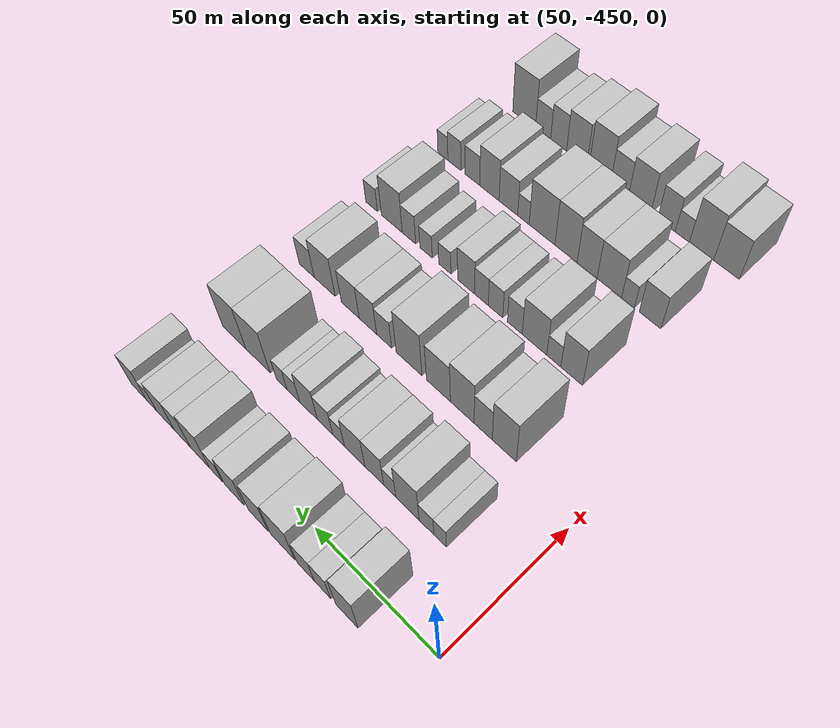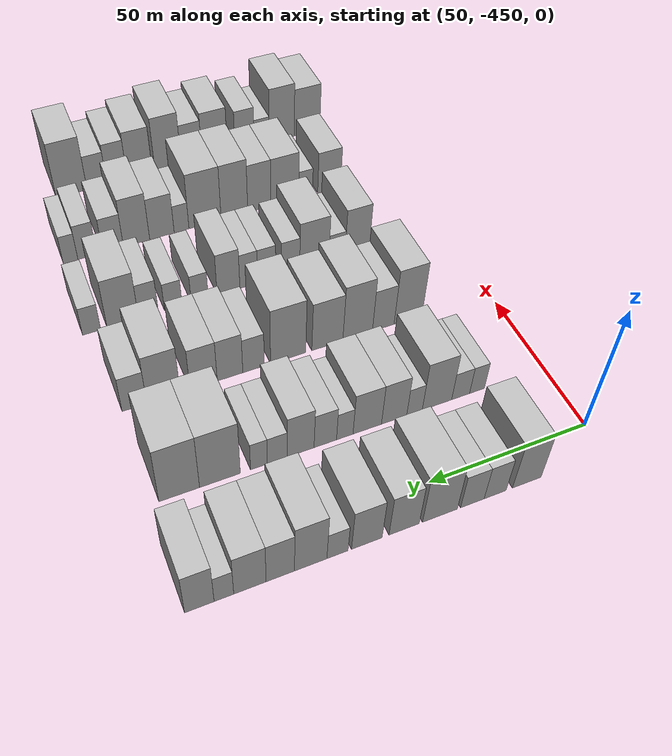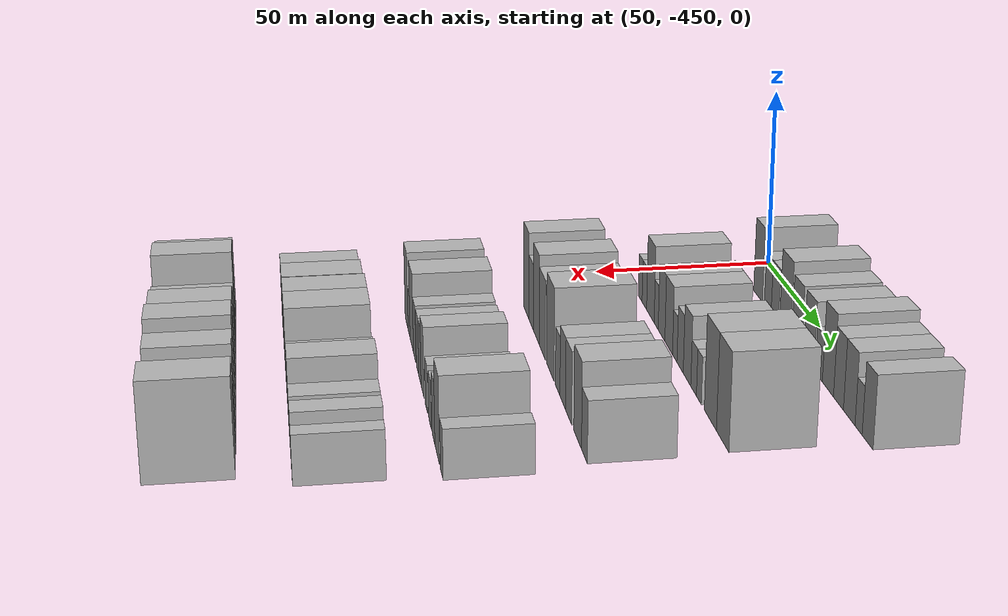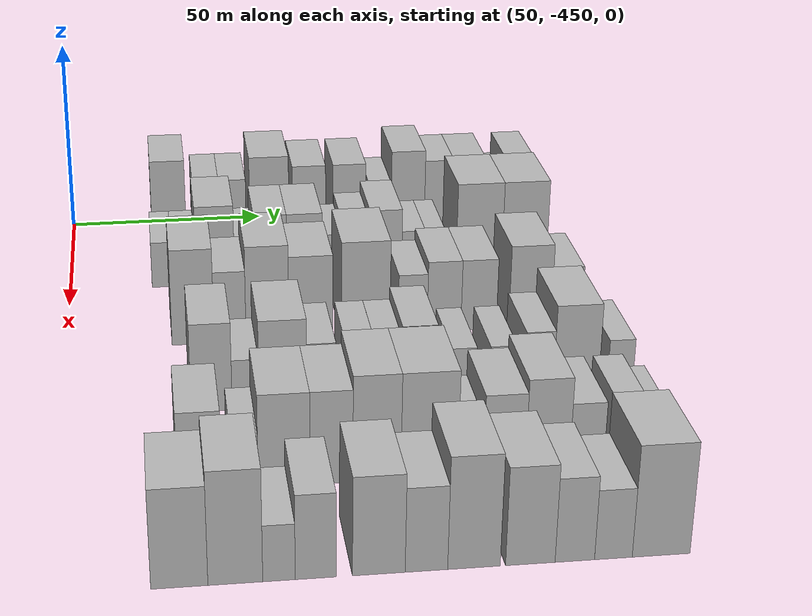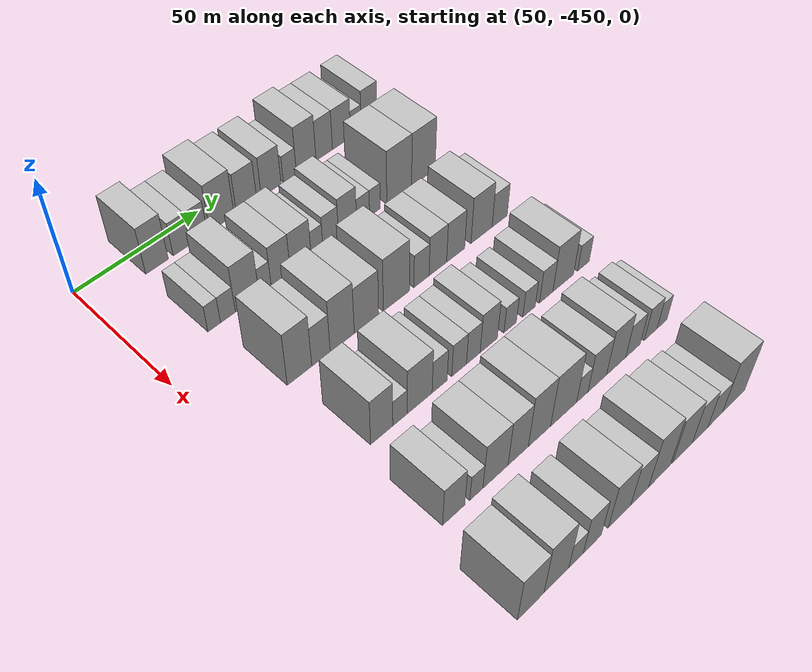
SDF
<sdf version="1.6">
 <world name="default">
  <model name="building_13">
   <static>1</static>
   <pose>50.0000 -424.6937 0 0.000000 0.000000 0.000000</pose>
   <link name="link">
    <pose>0 0 10.50 0 0 0</pose>
    <collision name="collision"><geometry><box><size>20.0000 9.0084 21.0000</size></box></geometry></collision>
    <visual name="visual">
     <cast_shadows>0</cast_shadows>
     <geometry><box><size>20.0000 9.0084 21.0000</size></box></geometry>
     <material>
      <script>
       <uri>model://HANNAS_wall/materials/scripts</uri>
       <uri>model://HANNAS_wall/materials/textures</uri>
       <name>vrc/HANNAS_wall</name>
      </script>
     </material>
    </visual>
   </link>
  </model>
  <model name="building_14">
   <static>1</static>
   <pose>50.0000 -414.7915 0 0.000000 0.000000 0.000000</pose>
   <link name="link">
    <pose>0 0 7.50 0 0 0</pose>
    <collision name="collision"><geometry><box><size>20.0000 6.7960 15.0000</size></box></geometry></collision>
    <visual name="visual">
     <cast_shadows>0</cast_shadows>
     <geometry><box><size>20.0000 6.7960 15.0000</size></box></geometry>
     <material>
      <script>
       <uri>model://HANNAS_wall/materials/scripts</uri>
       <uri>model://HANNAS_wall/materials/textures</uri>
       <name>vrc/HANNAS_wall</name>
      </script>
     </material>
    </visual>
   </link>
  </model>
  <model name="building_15">
   <static>1</static>
   <pose>50.0000 -407.7959 0 0.000000 0.000000 0.000000</pose>
   <link name="link">
    <pose>0 0 7.50 0 0 0</pose>
    <collision name="collision"><geometry><box><size>20.0000 7.1952 15.0000</size></box></geometry></collision>
    <visual name="visual">
     <cast_shadows>0</cast_shadows>
     <geometry><box><size>20.0000 7.1952 15.0000</size></box></geometry>
     <material>
      <script>
       <uri>model://HANNAS_wall/materials/scripts</uri>
       <uri>model://HANNAS_wall/materials/textures</uri>
       <name>vrc/HANNAS_wall</name>
      </script>
     </material>
    </visual>
   </link>
  </model>
  <model name="building_16">
   <static>1</static>
   <pose>50.0000 -397.9881 0 0.000000 0.000000 0.000000</pose>
   <link name="link">
    <pose>0 0 10.50 0 0 0</pose>
    <collision name="collision"><geometry><box><size>20.0000 10.4205 21.0000</size></box></geometry></collision>
    <visual name="visual">
     <cast_shadows>0</cast_shadows>
     <geometry><box><size>20.0000 10.4205 21.0000</size></box></geometry>
     <material>
      <script>
       <uri>model://HANNAS_wall/materials/scripts</uri>
       <uri>model://HANNAS_wall/materials/textures</uri>
       <name>vrc/HANNAS_wall</name>
      </script>
     </material>
    </visual>
   </link>
  </model>
  <model name="building_17">
   <static>1</static>
   <pose>50.0000 -387.3474 0 0.000000 0.000000 0.000000</pose>
   <link name="link">
    <pose>0 0 9.00 0 0 0</pose>
    <collision name="collision"><geometry><box><size>20.0000 8.8608 18.0000</size></box></geometry></collision>
    <visual name="visual">
     <cast_shadows>0</cast_shadows>
     <geometry><box><size>20.0000 8.8608 18.0000</size></box></geometry>
     <material>
      <script>
       <uri>model://HANNAS_wall/materials/scripts</uri>
       <uri>model://HANNAS_wall/materials/textures</uri>
       <name>vrc/HANNAS_wall</name>
      </script>
     </material>
    </visual>
   </link>
  </model>
  <model name="building_18">
   <static>1</static>
   <pose>50.0000 -376.5209 0 0.000000 0.000000 0.000000</pose>
   <link name="link">
    <pose>0 0 9.00 0 0 0</pose>
    <collision name="collision"><geometry><box><size>20.0000 8.7922 18.0000</size></box></geometry></collision>
    <visual name="visual">
     <cast_shadows>0</cast_shadows>
     <geometry><box><size>20.0000 8.7922 18.0000</size></box></geometry>
     <material>
      <script>
       <uri>model://HANNAS_wall/materials/scripts</uri>
       <uri>model://HANNAS_wall/materials/textures</uri>
       <name>vrc/HANNAS_wall</name>
      </script>
     </material>
    </visual>
   </link>
  </model>
  <model name="building_19">
   <static>1</static>
   <pose>50.0000 -368.1460 0 0.000000 0.000000 0.000000</pose>
   <link name="link">
    <pose>0 0 6.00 0 0 0</pose>
    <collision name="collision"><geometry><box><size>20.0000 5.9575 12.0000</size></box></geometry></collision>
    <visual name="visual">
     <cast_shadows>0</cast_shadows>
     <geometry><box><size>20.0000 5.9575 12.0000</size></box></geometry>
     <material>
      <script>
       <uri>model://HANNAS_wall/materials/scripts</uri>
       <uri>model://HANNAS_wall/materials/textures</uri>
       <name>vrc/HANNAS_wall</name>
      </script>
     </material>
    </visual>
   </link>
  </model>
  <model name="building_20">
   <static>1</static>
   <pose>50.0000 -360.6383 0 0.000000 0.000000 0.000000</pose>
   <link name="link">
    <pose>0 0 10.50 0 0 0</pose>
    <collision name="collision"><geometry><box><size>20.0000 9.0580 21.0000</size></box></geometry></collision>
    <visual name="visual">
     <cast_shadows>0</cast_shadows>
     <geometry><box><size>20.0000 9.0580 21.0000</size></box></geometry>
     <material>
      <script>
       <uri>model://HANNAS_wall/materials/scripts</uri>
       <uri>model://HANNAS_wall/materials/textures</uri>
       <name>vrc/HANNAS_wall</name>
      </script>
     </material>
    </visual>
   </link>
  </model>
  <model name="building_21">
   <static>1</static>
   <pose>50.0000 -352.2308 0 0.000000 0.000000 0.000000</pose>
   <link name="link">
    <pose>0 0 9.00 0 0 0</pose>
    <collision name="collision"><geometry><box><size>20.0000 7.7570 18.0000</size></box></geometry></collision>
    <visual name="visual">
     <cast_shadows>0</cast_shadows>
     <geometry><box><size>20.0000 7.7570 18.0000</size></box></geometry>
     <material>
      <script>
       <uri>model://HANNAS_wall/materials/scripts</uri>
       <uri>model://HANNAS_wall/materials/textures</uri>
       <name>vrc/HANNAS_wall</name>
      </script>
     </material>
    </visual>
   </link>
  </model>
  <model name="building_22">
   <static>1</static>
   <pose>50.0000 -344.0034 0 0.000000 0.000000 0.000000</pose>
   <link name="link">
    <pose>0 0 9.00 0 0 0</pose>
    <collision name="collision"><geometry><box><size>20.0000 8.6980 18.0000</size></box></geometry></collision>
    <visual name="visual">
     <cast_shadows>0</cast_shadows>
     <geometry><box><size>20.0000 8.6980 18.0000</size></box></geometry>
     <material>
      <script>
       <uri>model://HANNAS_wall/materials/scripts</uri>
       <uri>model://HANNAS_wall/materials/textures</uri>
       <name>vrc/HANNAS_wall</name>
      </script>
     </material>
    </visual>
   </link>
  </model>
  <model name="building_23">
   <static>1</static>
   <pose>50.0000 -337.0543 0 0.000000 0.000000 0.000000</pose>
   <link name="link">
    <pose>0 0 6.00 0 0 0</pose>
    <collision name="collision"><geometry><box><size>20.0000 5.2001 12.0000</size></box></geometry></collision>
    <visual name="visual">
     <cast_shadows>0</cast_shadows>
     <geometry><box><size>20.0000 5.2001 12.0000</size></box></geometry>
     <material>
      <script>
       <uri>model://HANNAS_wall/materials/scripts</uri>
       <uri>model://HANNAS_wall/materials/textures</uri>
       <name>vrc/HANNAS_wall</name>
      </script>
     </material>
    </visual>
   </link>
  </model>
  <model name="building_24">
   <static>1</static>
   <pose>50.0000 -330.5695 0 0.000000 0.000000 0.000000</pose>
   <link name="link">
    <pose>0 0 9.00 0 0 0</pose>
    <collision name="collision"><geometry><box><size>20.0000 7.7696 18.0000</size></box></geometry></collision>
    <visual name="visual">
     <cast_shadows>0</cast_shadows>
     <geometry><box><size>20.0000 7.7696 18.0000</size></box></geometry>
     <material>
      <script>
       <uri>model://HANNAS_wall/materials/scripts</uri>
       <uri>model://HANNAS_wall/materials/textures</uri>
       <name>vrc/HANNAS_wall</name>
      </script>
     </material>
    </visual>
   </link>
  </model>
  <model name="building_130">
   <static>1</static>
   <pose>82.0000 -427.3768 0 0.000000 0.000000 0.000000</pose>
   <link name="link">
    <pose>0 0 6.00 0 0 0</pose>
    <collision name="collision"><geometry><box><size>20.0000 4.9490 12.0000</size></box></geometry></collision>
    <visual name="visual">
     <cast_shadows>0</cast_shadows>
     <geometry><box><size>20.0000 4.9490 12.0000</size></box></geometry>
     <material>
      <script>
       <uri>model://HANNAS_wall/materials/scripts</uri>
       <uri>model://HANNAS_wall/materials/textures</uri>
       <name>vrc/HANNAS_wall</name>
      </script>
     </material>
    </visual>
   </link>
  </model>
  <model name="building_131">
   <static>1</static>
   <pose>82.0000 -421.9270 0 0.000000 0.000000 0.000000</pose>
   <link name="link">
    <pose>0 0 6.00 0 0 0</pose>
    <collision name="collision"><geometry><box><size>20.0000 5.9507 12.0000</size></box></geometry></collision>
    <visual name="visual">
     <cast_shadows>0</cast_shadows>
     <geometry><box><size>20.0000 5.9507 12.0000</size></box></geometry>
     <material>
      <script>
       <uri>model://HANNAS_wall/materials/scripts</uri>
       <uri>model://HANNAS_wall/materials/textures</uri>
       <name>vrc/HANNAS_wall</name>
      </script>
     </material>
    </visual>
   </link>
  </model>
  <model name="building_132">
   <static>1</static>
   <pose>82.0000 -414.1468 0 0.000000 0.000000 0.000000</pose>
   <link name="link">
    <pose>0 0 10.50 0 0 0</pose>
    <collision name="collision"><geometry><box><size>20.0000 9.6095 21.0000</size></box></geometry></collision>
    <visual name="visual">
     <cast_shadows>0</cast_shadows>
     <geometry><box><size>20.0000 9.6095 21.0000</size></box></geometry>
     <material>
      <script>
       <uri>model://HANNAS_wall/materials/scripts</uri>
       <uri>model://HANNAS_wall/materials/textures</uri>
       <name>vrc/HANNAS_wall</name>
      </script>
     </material>
    </visual>
   </link>
  </model>
  <model name="building_133">
   <static>1</static>
   <pose>82.0000 -406.8396 0 0.000000 0.000000 0.000000</pose>
   <link name="link">
    <pose>0 0 6.00 0 0 0</pose>
    <collision name="collision"><geometry><box><size>20.0000 5.0050 12.0000</size></box></geometry></collision>
    <visual name="visual">
     <cast_shadows>0</cast_shadows>
     <geometry><box><size>20.0000 5.0050 12.0000</size></box></geometry>
     <material>
      <script>
       <uri>model://HANNAS_wall/materials/scripts</uri>
       <uri>model://HANNAS_wall/materials/textures</uri>
       <name>vrc/HANNAS_wall</name>
      </script>
     </material>
    </visual>
   </link>
  </model>
  <model name="building_134">
   <static>1</static>
   <pose>82.0000 -400.3045 0 0.000000 0.000000 0.000000</pose>
   <link name="link">
    <pose>0 0 9.00 0 0 0</pose>
    <collision name="collision"><geometry><box><size>20.0000 8.0650 18.0000</size></box></geometry></collision>
    <visual name="visual">
     <cast_shadows>0</cast_shadows>
     <geometry><box><size>20.0000 8.0650 18.0000</size></box></geometry>
     <material>
      <script>
       <uri>model://HANNAS_wall/materials/scripts</uri>
       <uri>model://HANNAS_wall/materials/textures</uri>
       <name>vrc/HANNAS_wall</name>
      </script>
     </material>
    </visual>
   </link>
  </model>
  <model name="building_135">
   <static>1</static>
   <pose>82.0000 -391.7988 0 0.000000 0.000000 0.000000</pose>
   <link name="link">
    <pose>0 0 9.00 0 0 0</pose>
    <collision name="collision"><geometry><box><size>20.0000 8.9465 18.0000</size></box></geometry></collision>
    <visual name="visual">
     <cast_shadows>0</cast_shadows>
     <geometry><box><size>20.0000 8.9465 18.0000</size></box></geometry>
     <material>
      <script>
       <uri>model://HANNAS_wall/materials/scripts</uri>
       <uri>model://HANNAS_wall/materials/textures</uri>
       <name>vrc/HANNAS_wall</name>
      </script>
     </material>
    </visual>
   </link>
  </model>
  <model name="building_136">
   <static>1</static>
   <pose>82.0000 -384.7757 0 0.000000 0.000000 0.000000</pose>
   <link name="link">
    <pose>0 0 6.00 0 0 0</pose>
    <collision name="collision"><geometry><box><size>20.0000 5.0998 12.0000</size></box></geometry></collision>
    <visual name="visual">
     <cast_shadows>0</cast_shadows>
     <geometry><box><size>20.0000 5.0998 12.0000</size></box></geometry>
     <material>
      <script>
       <uri>model://HANNAS_wall/materials/scripts</uri>
       <uri>model://HANNAS_wall/materials/textures</uri>
       <name>vrc/HANNAS_wall</name>
      </script>
     </material>
    </visual>
   </link>
  </model>
  <model name="building_137">
   <static>1</static>
   <pose>82.0000 -378.7766 0 0.000000 0.000000 0.000000</pose>
   <link name="link">
    <pose>0 0 7.50 0 0 0</pose>
    <collision name="collision"><geometry><box><size>20.0000 6.8984 15.0000</size></box></geometry></collision>
    <visual name="visual">
     <cast_shadows>0</cast_shadows>
     <geometry><box><size>20.0000 6.8984 15.0000</size></box></geometry>
     <material>
      <script>
       <uri>model://HANNAS_wall/materials/scripts</uri>
       <uri>model://HANNAS_wall/materials/textures</uri>
       <name>vrc/HANNAS_wall</name>
      </script>
     </material>
    </visual>
   </link>
  </model>
  <model name="building_138">
   <static>1</static>
   <pose>82.0000 -371.2646 0 0.000000 0.000000 0.000000</pose>
   <link name="link">
    <pose>0 0 9.00 0 0 0</pose>
    <collision name="collision"><geometry><box><size>20.0000 8.1256 18.0000</size></box></geometry></collision>
    <visual name="visual">
     <cast_shadows>0</cast_shadows>
     <geometry><box><size>20.0000 8.1256 18.0000</size></box></geometry>
     <material>
      <script>
       <uri>model://HANNAS_wall/materials/scripts</uri>
       <uri>model://HANNAS_wall/materials/textures</uri>
       <name>vrc/HANNAS_wall</name>
      </script>
     </material>
    </visual>
   </link>
  </model>
  <model name="building_139">
   <static>1</static>
   <pose>82.0000 -364.2431 0 0.000000 0.000000 0.000000</pose>
   <link name="link">
    <pose>0 0 6.00 0 0 0</pose>
    <collision name="collision"><geometry><box><size>20.0000 5.9174 12.0000</size></box></geometry></collision>
    <visual name="visual">
     <cast_shadows>0</cast_shadows>
     <geometry><box><size>20.0000 5.9174 12.0000</size></box></geometry>
     <material>
      <script>
       <uri>model://HANNAS_wall/materials/scripts</uri>
       <uri>model://HANNAS_wall/materials/textures</uri>
       <name>vrc/HANNAS_wall</name>
      </script>
     </material>
    </visual>
   </link>
  </model>
  <model name="building_140">
   <static>1</static>
   <pose>82.0000 -358.7976 0 0.000000 0.000000 0.000000</pose>
   <link name="link">
    <pose>0 0 6.00 0 0 0</pose>
    <collision name="collision"><geometry><box><size>20.0000 4.9737 12.0000</size></box></geometry></collision>
    <visual name="visual">
     <cast_shadows>0</cast_shadows>
     <geometry><box><size>20.0000 4.9737 12.0000</size></box></geometry>
     <material>
      <script>
       <uri>model://HANNAS_wall/materials/scripts</uri>
       <uri>model://HANNAS_wall/materials/textures</uri>
       <name>vrc/HANNAS_wall</name>
      </script>
     </material>
    </visual>
   </link>
  </model>
  <model name="building_141">
   <static>1</static>
   <pose>82.0000 -347.4207 0 0.000000 0.000000 0.000000</pose>
   <link name="link">
    <pose>0 0 12.00 0 0 0</pose>
    <collision name="collision"><geometry><box><size>20.0000 11.7801 24.0000</size></box></geometry></collision>
    <visual name="visual">
     <cast_shadows>0</cast_shadows>
     <geometry><box><size>20.0000 11.7801 24.0000</size></box></geometry>
     <material>
      <script>
       <uri>model://HANNAS_wall/materials/scripts</uri>
       <uri>model://HANNAS_wall/materials/textures</uri>
       <name>vrc/HANNAS_wall</name>
      </script>
     </material>
    </visual>
   </link>
  </model>
  <model name="building_142">
   <static>1</static>
   <pose>82.0000 -335.7619 0 0.000000 0.000000 0.000000</pose>
   <link name="link">
    <pose>0 0 12.00 0 0 0</pose>
    <collision name="collision"><geometry><box><size>20.0000 11.5374 24.0000</size></box></geometry></collision>
    <visual name="visual">
     <cast_shadows>0</cast_shadows>
     <geometry><box><size>20.0000 11.5374 24.0000</size></box></geometry>
     <material>
      <script>
       <uri>model://HANNAS_wall/materials/scripts</uri>
       <uri>model://HANNAS_wall/materials/textures</uri>
       <name>vrc/HANNAS_wall</name>
      </script>
     </material>
    </visual>
   </link>
  </model>
  <model name="building_259">
   <static>1</static>
   <pose>114.0000 -421.0324 0 0.000000 0.000000 0.000000</pose>
   <link name="link">
    <pose>0 0 12.00 0 0 0</pose>
    <collision name="collision"><geometry><box><size>20.0000 9.7336 24.0000</size></box></geometry></collision>
    <visual name="visual">
     <cast_shadows>0</cast_shadows>
     <geometry><box><size>20.0000 9.7336 24.0000</size></box></geometry>
     <material>
      <script>
       <uri>model://HANNAS_wall/materials/scripts</uri>
       <uri>model://HANNAS_wall/materials/textures</uri>
       <name>vrc/HANNAS_wall</name>
      </script>
     </material>
    </visual>
   </link>
  </model>
  <model name="building_260">
   <static>1</static>
   <pose>114.0000 -412.4393 0 0.000000 0.000000 0.000000</pose>
   <link name="link">
    <pose>0 0 9.00 0 0 0</pose>
    <collision name="collision"><geometry><box><size>20.0000 7.4528 18.0000</size></box></geometry></collision>
    <visual name="visual">
     <cast_shadows>0</cast_shadows>
     <geometry><box><size>20.0000 7.4528 18.0000</size></box></geometry>
     <material>
      <script>
       <uri>model://HANNAS_wall/materials/scripts</uri>
       <uri>model://HANNAS_wall/materials/textures</uri>
       <name>vrc/HANNAS_wall</name>
      </script>
     </material>
    </visual>
   </link>
  </model>
  <model name="building_261">
   <static>1</static>
   <pose>114.0000 -403.7039 0 0.000000 0.000000 0.000000</pose>
   <link name="link">
    <pose>0 0 12.00 0 0 0</pose>
    <collision name="collision"><geometry><box><size>20.0000 10.0180 24.0000</size></box></geometry></collision>
    <visual name="visual">
     <cast_shadows>0</cast_shadows>
     <geometry><box><size>20.0000 10.0180 24.0000</size></box></geometry>
     <material>
      <script>
       <uri>model://HANNAS_wall/materials/scripts</uri>
       <uri>model://HANNAS_wall/materials/textures</uri>
       <name>vrc/HANNAS_wall</name>
      </script>
     </material>
    </visual>
   </link>
  </model>
  <model name="building_262">
   <static>1</static>
   <pose>114.0000 -393.5247 0 0.000000 0.000000 0.000000</pose>
   <link name="link">
    <pose>0 0 10.50 0 0 0</pose>
    <collision name="collision"><geometry><box><size>20.0000 10.3404 21.0000</size></box></geometry></collision>
    <visual name="visual">
     <cast_shadows>0</cast_shadows>
     <geometry><box><size>20.0000 10.3404 21.0000</size></box></geometry>
     <material>
      <script>
       <uri>model://HANNAS_wall/materials/scripts</uri>
       <uri>model://HANNAS_wall/materials/textures</uri>
       <name>vrc/HANNAS_wall</name>
      </script>
     </material>
    </visual>
   </link>
  </model>
  <model name="building_263">
   <static>1</static>
   <pose>114.0000 -380.6192 0 0.000000 0.000000 0.000000</pose>
   <link name="link">
    <pose>0 0 12.00 0 0 0</pose>
    <collision name="collision"><geometry><box><size>20.0000 11.4706 24.0000</size></box></geometry></collision>
    <visual name="visual">
     <cast_shadows>0</cast_shadows>
     <geometry><box><size>20.0000 11.4706 24.0000</size></box></geometry>
     <material>
      <script>
       <uri>model://HANNAS_wall/materials/scripts</uri>
       <uri>model://HANNAS_wall/materials/textures</uri>
       <name>vrc/HANNAS_wall</name>
      </script>
     </material>
    </visual>
   </link>
  </model>
  <model name="building_264">
   <static>1</static>
   <pose>114.0000 -369.4469 0 0.000000 0.000000 0.000000</pose>
   <link name="link">
    <pose>0 0 7.50 0 0 0</pose>
    <collision name="collision"><geometry><box><size>20.0000 6.8738 15.0000</size></box></geometry></collision>
    <visual name="visual">
     <cast_shadows>0</cast_shadows>
     <geometry><box><size>20.0000 6.8738 15.0000</size></box></geometry>
     <material>
      <script>
       <uri>model://HANNAS_wall/materials/scripts</uri>
       <uri>model://HANNAS_wall/materials/textures</uri>
       <name>vrc/HANNAS_wall</name>
      </script>
     </material>
    </visual>
   </link>
  </model>
  <model name="building_265">
   <static>1</static>
   <pose>114.0000 -361.9762 0 0.000000 0.000000 0.000000</pose>
   <link name="link">
    <pose>0 0 9.00 0 0 0</pose>
    <collision name="collision"><geometry><box><size>20.0000 8.0677 18.0000</size></box></geometry></collision>
    <visual name="visual">
     <cast_shadows>0</cast_shadows>
     <geometry><box><size>20.0000 8.0677 18.0000</size></box></geometry>
     <material>
      <script>
       <uri>model://HANNAS_wall/materials/scripts</uri>
       <uri>model://HANNAS_wall/materials/textures</uri>
       <name>vrc/HANNAS_wall</name>
      </script>
     </material>
    </visual>
   </link>
  </model>
  <model name="building_266">
   <static>1</static>
   <pose>114.0000 -353.7000 0 0.000000 0.000000 0.000000</pose>
   <link name="link">
    <pose>0 0 9.00 0 0 0</pose>
    <collision name="collision"><geometry><box><size>20.0000 8.4847 18.0000</size></box></geometry></collision>
    <visual name="visual">
     <cast_shadows>0</cast_shadows>
     <geometry><box><size>20.0000 8.4847 18.0000</size></box></geometry>
     <material>
      <script>
       <uri>model://HANNAS_wall/materials/scripts</uri>
       <uri>model://HANNAS_wall/materials/textures</uri>
       <name>vrc/HANNAS_wall</name>
      </script>
     </material>
    </visual>
   </link>
  </model>
  <model name="building_267">
   <static>1</static>
   <pose>114.0000 -341.3632 0 0.000000 0.000000 0.000000</pose>
   <link name="link">
    <pose>0 0 10.50 0 0 0</pose>
    <collision name="collision"><geometry><box><size>20.0000 10.1888 21.0000</size></box></geometry></collision>
    <visual name="visual">
     <cast_shadows>0</cast_shadows>
     <geometry><box><size>20.0000 10.1888 21.0000</size></box></geometry>
     <material>
      <script>
       <uri>model://HANNAS_wall/materials/scripts</uri>
       <uri>model://HANNAS_wall/materials/textures</uri>
       <name>vrc/HANNAS_wall</name>
      </script>
     </material>
    </visual>
   </link>
  </model>
  <model name="building_268">
   <static>1</static>
   <pose>114.0000 -332.5548 0 0.000000 0.000000 0.000000</pose>
   <link name="link">
    <pose>0 0 7.50 0 0 0</pose>
    <collision name="collision"><geometry><box><size>20.0000 7.4280 15.0000</size></box></geometry></collision>
    <visual name="visual">
     <cast_shadows>0</cast_shadows>
     <geometry><box><size>20.0000 7.4280 15.0000</size></box></geometry>
     <material>
      <script>
       <uri>model://HANNAS_wall/materials/scripts</uri>
       <uri>model://HANNAS_wall/materials/textures</uri>
       <name>vrc/HANNAS_wall</name>
      </script>
     </material>
    </visual>
   </link>
  </model>
  <model name="building_366">
   <static>1</static>
   <pose>146.0000 -418.3691 0 0.000000 0.000000 0.000000</pose>
   <link name="link">
    <pose>0 0 10.50 0 0 0</pose>
    <collision name="collision"><geometry><box><size>20.0000 8.8698 21.0000</size></box></geometry></collision>
    <visual name="visual">
     <cast_shadows>0</cast_shadows>
     <geometry><box><size>20.0000 8.8698 21.0000</size></box></geometry>
     <material>
      <script>
       <uri>model://HANNAS_wall/materials/scripts</uri>
       <uri>model://HANNAS_wall/materials/textures</uri>
       <name>vrc/HANNAS_wall</name>
      </script>
     </material>
    </visual>
   </link>
  </model>
  <model name="building_367">
   <static>1</static>
   <pose>146.0000 -411.0286 0 0.000000 0.000000 0.000000</pose>
   <link name="link">
    <pose>0 0 6.00 0 0 0</pose>
    <collision name="collision"><geometry><box><size>20.0000 5.8111 12.0000</size></box></geometry></collision>
    <visual name="visual">
     <cast_shadows>0</cast_shadows>
     <geometry><box><size>20.0000 5.8111 12.0000</size></box></geometry>
     <material>
      <script>
       <uri>model://HANNAS_wall/materials/scripts</uri>
       <uri>model://HANNAS_wall/materials/textures</uri>
       <name>vrc/HANNAS_wall</name>
      </script>
     </material>
    </visual>
   </link>
  </model>
  <model name="building_368">
   <static>1</static>
   <pose>146.0000 -402.9404 0 0.000000 0.000000 0.000000</pose>
   <link name="link">
    <pose>0 0 10.50 0 0 0</pose>
    <collision name="collision"><geometry><box><size>20.0000 10.3654 21.0000</size></box></geometry></collision>
    <visual name="visual">
     <cast_shadows>0</cast_shadows>
     <geometry><box><size>20.0000 10.3654 21.0000</size></box></geometry>
     <material>
      <script>
       <uri>model://HANNAS_wall/materials/scripts</uri>
       <uri>model://HANNAS_wall/materials/textures</uri>
       <name>vrc/HANNAS_wall</name>
      </script>
     </material>
    </visual>
   </link>
  </model>
  <model name="building_369">
   <static>1</static>
   <pose>146.0000 -394.5740 0 0.000000 0.000000 0.000000</pose>
   <link name="link">
    <pose>0 0 7.50 0 0 0</pose>
    <collision name="collision"><geometry><box><size>20.0000 6.3672 15.0000</size></box></geometry></collision>
    <visual name="visual">
     <cast_shadows>0</cast_shadows>
     <geometry><box><size>20.0000 6.3672 15.0000</size></box></geometry>
     <material>
      <script>
       <uri>model://HANNAS_wall/materials/scripts</uri>
       <uri>model://HANNAS_wall/materials/textures</uri>
       <name>vrc/HANNAS_wall</name>
      </script>
     </material>
    </visual>
   </link>
  </model>
  <model name="building_370">
   <static>1</static>
   <pose>146.0000 -386.2161 0 0.000000 0.000000 0.000000</pose>
   <link name="link">
    <pose>0 0 7.50 0 0 0</pose>
    <collision name="collision"><geometry><box><size>20.0000 6.3487 15.0000</size></box></geometry></collision>
    <visual name="visual">
     <cast_shadows>0</cast_shadows>
     <geometry><box><size>20.0000 6.3487 15.0000</size></box></geometry>
     <material>
      <script>
       <uri>model://HANNAS_wall/materials/scripts</uri>
       <uri>model://HANNAS_wall/materials/textures</uri>
       <name>vrc/HANNAS_wall</name>
      </script>
     </material>
    </visual>
   </link>
  </model>
  <model name="building_371">
   <static>1</static>
   <pose>146.0000 -380.0095 0 0.000000 0.000000 0.000000</pose>
   <link name="link">
    <pose>0 0 7.50 0 0 0</pose>
    <collision name="collision"><geometry><box><size>20.0000 6.0644 15.0000</size></box></geometry></collision>
    <visual name="visual">
     <cast_shadows>0</cast_shadows>
     <geometry><box><size>20.0000 6.0644 15.0000</size></box></geometry>
     <material>
      <script>
       <uri>model://HANNAS_wall/materials/scripts</uri>
       <uri>model://HANNAS_wall/materials/textures</uri>
       <name>vrc/HANNAS_wall</name>
      </script>
     </material>
    </visual>
   </link>
  </model>
  <model name="building_372">
   <static>1</static>
   <pose>146.0000 -373.1115 0 0.000000 0.000000 0.000000</pose>
   <link name="link">
    <pose>0 0 9.00 0 0 0</pose>
    <collision name="collision"><geometry><box><size>20.0000 7.7315 18.0000</size></box></geometry></collision>
    <visual name="visual">
     <cast_shadows>0</cast_shadows>
     <geometry><box><size>20.0000 7.7315 18.0000</size></box></geometry>
     <material>
      <script>
       <uri>model://HANNAS_wall/materials/scripts</uri>
       <uri>model://HANNAS_wall/materials/textures</uri>
       <name>vrc/HANNAS_wall</name>
      </script>
     </material>
    </visual>
   </link>
  </model>
  <model name="building_373">
   <static>1</static>
   <pose>146.0000 -363.3980 0 0.000000 0.000000 0.000000</pose>
   <link name="link">
    <pose>0 0 6.00 0 0 0</pose>
    <collision name="collision"><geometry><box><size>20.0000 5.6955 12.0000</size></box></geometry></collision>
    <visual name="visual">
     <cast_shadows>0</cast_shadows>
     <geometry><box><size>20.0000 5.6955 12.0000</size></box></geometry>
     <material>
      <script>
       <uri>model://HANNAS_wall/materials/scripts</uri>
       <uri>model://HANNAS_wall/materials/textures</uri>
       <name>vrc/HANNAS_wall</name>
      </script>
     </material>
    </visual>
   </link>
  </model>
  <model name="building_374">
   <static>1</static>
   <pose>146.0000 -354.6327 0 0.000000 0.000000 0.000000</pose>
   <link name="link">
    <pose>0 0 6.00 0 0 0</pose>
    <collision name="collision"><geometry><box><size>20.0000 5.8353 12.0000</size></box></geometry></collision>
    <visual name="visual">
     <cast_shadows>0</cast_shadows>
     <geometry><box><size>20.0000 5.8353 12.0000</size></box></geometry>
     <material>
      <script>
       <uri>model://HANNAS_wall/materials/scripts</uri>
       <uri>model://HANNAS_wall/materials/textures</uri>
       <name>vrc/HANNAS_wall</name>
      </script>
     </material>
    </visual>
   </link>
  </model>
  <model name="building_375">
   <static>1</static>
   <pose>146.0000 -346.4797 0 0.000000 0.000000 0.000000</pose>
   <link name="link">
    <pose>0 0 7.50 0 0 0</pose>
    <collision name="collision"><geometry><box><size>20.0000 6.4708 15.0000</size></box></geometry></collision>
    <visual name="visual">
     <cast_shadows>0</cast_shadows>
     <geometry><box><size>20.0000 6.4708 15.0000</size></box></geometry>
     <material>
      <script>
       <uri>model://HANNAS_wall/materials/scripts</uri>
       <uri>model://HANNAS_wall/materials/textures</uri>
       <name>vrc/HANNAS_wall</name>
      </script>
     </material>
    </visual>
   </link>
  </model>
  <model name="building_376">
   <static>1</static>
   <pose>146.0000 -338.1781 0 0.000000 0.000000 0.000000</pose>
   <link name="link">
    <pose>0 0 10.50 0 0 0</pose>
    <collision name="collision"><geometry><box><size>20.0000 10.1324 21.0000</size></box></geometry></collision>
    <visual name="visual">
     <cast_shadows>0</cast_shadows>
     <geometry><box><size>20.0000 10.1324 21.0000</size></box></geometry>
     <material>
      <script>
       <uri>model://HANNAS_wall/materials/scripts</uri>
       <uri>model://HANNAS_wall/materials/textures</uri>
       <name>vrc/HANNAS_wall</name>
      </script>
     </material>
    </visual>
   </link>
  </model>
  <model name="building_377">
   <static>1</static>
   <pose>146.0000 -328.2269 0 0.000000 0.000000 0.000000</pose>
   <link name="link">
    <pose>0 0 6.00 0 0 0</pose>
    <collision name="collision"><geometry><box><size>20.0000 5.7700 12.0000</size></box></geometry></collision>
    <visual name="visual">
     <cast_shadows>0</cast_shadows>
     <geometry><box><size>20.0000 5.7700 12.0000</size></box></geometry>
     <material>
      <script>
       <uri>model://HANNAS_wall/materials/scripts</uri>
       <uri>model://HANNAS_wall/materials/textures</uri>
       <name>vrc/HANNAS_wall</name>
      </script>
     </material>
    </visual>
   </link>
  </model>
  <model name="building_483">
   <static>1</static>
   <pose>178.0000 -422.4183 0 0.000000 0.000000 0.000000</pose>
   <link name="link">
    <pose>0 0 9.00 0 0 0</pose>
    <collision name="collision"><geometry><box><size>20.0000 8.7818 18.0000</size></box></geometry></collision>
    <visual name="visual">
     <cast_shadows>0</cast_shadows>
     <geometry><box><size>20.0000 8.7818 18.0000</size></box></geometry>
     <material>
      <script>
       <uri>model://HANNAS_wall/materials/scripts</uri>
       <uri>model://HANNAS_wall/materials/textures</uri>
       <name>vrc/HANNAS_wall</name>
      </script>
     </material>
    </visual>
   </link>
  </model>
  <model name="building_484">
   <static>1</static>
   <pose>178.0000 -413.3851 0 0.000000 0.000000 0.000000</pose>
   <link name="link">
    <pose>0 0 6.00 0 0 0</pose>
    <collision name="collision"><geometry><box><size>20.0000 5.2847 12.0000</size></box></geometry></collision>
    <visual name="visual">
     <cast_shadows>0</cast_shadows>
     <geometry><box><size>20.0000 5.2847 12.0000</size></box></geometry>
     <material>
      <script>
       <uri>model://HANNAS_wall/materials/scripts</uri>
       <uri>model://HANNAS_wall/materials/textures</uri>
       <name>vrc/HANNAS_wall</name>
      </script>
     </material>
    </visual>
   </link>
  </model>
  <model name="building_485">
   <static>1</static>
   <pose>178.0000 -405.5469 0 0.000000 0.000000 0.000000</pose>
   <link name="link">
    <pose>0 0 10.50 0 0 0</pose>
    <collision name="collision"><geometry><box><size>20.0000 10.3917 21.0000</size></box></geometry></collision>
    <visual name="visual">
     <cast_shadows>0</cast_shadows>
     <geometry><box><size>20.0000 10.3917 21.0000</size></box></geometry>
     <material>
      <script>
       <uri>model://HANNAS_wall/materials/scripts</uri>
       <uri>model://HANNAS_wall/materials/textures</uri>
       <name>vrc/HANNAS_wall</name>
      </script>
     </material>
    </visual>
   </link>
  </model>
  <model name="building_486">
   <static>1</static>
   <pose>178.0000 -396.0582 0 0.000000 0.000000 0.000000</pose>
   <link name="link">
    <pose>0 0 10.50 0 0 0</pose>
    <collision name="collision"><geometry><box><size>20.0000 8.5857 21.0000</size></box></geometry></collision>
    <visual name="visual">
     <cast_shadows>0</cast_shadows>
     <geometry><box><size>20.0000 8.5857 21.0000</size></box></geometry>
     <material>
      <script>
       <uri>model://HANNAS_wall/materials/scripts</uri>
       <uri>model://HANNAS_wall/materials/textures</uri>
       <name>vrc/HANNAS_wall</name>
      </script>
     </material>
    </visual>
   </link>
  </model>
  <model name="building_487">
   <static>1</static>
   <pose>178.0000 -386.8943 0 0.000000 0.000000 0.000000</pose>
   <link name="link">
    <pose>0 0 12.00 0 0 0</pose>
    <collision name="collision"><geometry><box><size>20.0000 9.7421 24.0000</size></box></geometry></collision>
    <visual name="visual">
     <cast_shadows>0</cast_shadows>
     <geometry><box><size>20.0000 9.7421 24.0000</size></box></geometry>
     <material>
      <script>
       <uri>model://HANNAS_wall/materials/scripts</uri>
       <uri>model://HANNAS_wall/materials/textures</uri>
       <name>vrc/HANNAS_wall</name>
      </script>
     </material>
    </visual>
   </link>
  </model>
  <model name="building_488">
   <static>1</static>
   <pose>178.0000 -376.2316 0 0.000000 0.000000 0.000000</pose>
   <link name="link">
    <pose>0 0 12.00 0 0 0</pose>
    <collision name="collision"><geometry><box><size>20.0000 11.5833 24.0000</size></box></geometry></collision>
    <visual name="visual">
     <cast_shadows>0</cast_shadows>
     <geometry><box><size>20.0000 11.5833 24.0000</size></box></geometry>
     <material>
      <script>
       <uri>model://HANNAS_wall/materials/scripts</uri>
       <uri>model://HANNAS_wall/materials/textures</uri>
       <name>vrc/HANNAS_wall</name>
      </script>
     </material>
    </visual>
   </link>
  </model>
  <model name="building_489">
   <static>1</static>
   <pose>178.0000 -367.8132 0 0.000000 0.000000 0.000000</pose>
   <link name="link">
    <pose>0 0 6.00 0 0 0</pose>
    <collision name="collision"><geometry><box><size>20.0000 5.2533 12.0000</size></box></geometry></collision>
    <visual name="visual">
     <cast_shadows>0</cast_shadows>
     <geometry><box><size>20.0000 5.2533 12.0000</size></box></geometry>
     <material>
      <script>
       <uri>model://HANNAS_wall/materials/scripts</uri>
       <uri>model://HANNAS_wall/materials/textures</uri>
       <name>vrc/HANNAS_wall</name>
      </script>
     </material>
    </visual>
   </link>
  </model>
  <model name="building_490">
   <static>1</static>
   <pose>178.0000 -360.8742 0 0.000000 0.000000 0.000000</pose>
   <link name="link">
    <pose>0 0 9.00 0 0 0</pose>
    <collision name="collision"><geometry><box><size>20.0000 8.6248 18.0000</size></box></geometry></collision>
    <visual name="visual">
     <cast_shadows>0</cast_shadows>
     <geometry><box><size>20.0000 8.6248 18.0000</size></box></geometry>
     <material>
      <script>
       <uri>model://HANNAS_wall/materials/scripts</uri>
       <uri>model://HANNAS_wall/materials/textures</uri>
       <name>vrc/HANNAS_wall</name>
      </script>
     </material>
    </visual>
   </link>
  </model>
  <model name="building_491">
   <static>1</static>
   <pose>178.0000 -352.0076 0 0.000000 0.000000 0.000000</pose>
   <link name="link">
    <pose>0 0 10.50 0 0 0</pose>
    <collision name="collision"><geometry><box><size>20.0000 9.1084 21.0000</size></box></geometry></collision>
    <visual name="visual">
     <cast_shadows>0</cast_shadows>
     <geometry><box><size>20.0000 9.1084 21.0000</size></box></geometry>
     <material>
      <script>
       <uri>model://HANNAS_wall/materials/scripts</uri>
       <uri>model://HANNAS_wall/materials/textures</uri>
       <name>vrc/HANNAS_wall</name>
      </script>
     </material>
    </visual>
   </link>
  </model>
  <model name="building_492">
   <static>1</static>
   <pose>178.0000 -343.8883 0 0.000000 0.000000 0.000000</pose>
   <link name="link">
    <pose>0 0 7.50 0 0 0</pose>
    <collision name="collision"><geometry><box><size>20.0000 7.1303 15.0000</size></box></geometry></collision>
    <visual name="visual">
     <cast_shadows>0</cast_shadows>
     <geometry><box><size>20.0000 7.1303 15.0000</size></box></geometry>
     <material>
      <script>
       <uri>model://HANNAS_wall/materials/scripts</uri>
       <uri>model://HANNAS_wall/materials/textures</uri>
       <name>vrc/HANNAS_wall</name>
      </script>
     </material>
    </visual>
   </link>
  </model>
  <model name="building_493">
   <static>1</static>
   <pose>178.0000 -335.1234 0 0.000000 0.000000 0.000000</pose>
   <link name="link">
    <pose>0 0 7.50 0 0 0</pose>
    <collision name="collision"><geometry><box><size>20.0000 6.3995 15.0000</size></box></geometry></collision>
    <visual name="visual">
     <cast_shadows>0</cast_shadows>
     <geometry><box><size>20.0000 6.3995 15.0000</size></box></geometry>
     <material>
      <script>
       <uri>model://HANNAS_wall/materials/scripts</uri>
       <uri>model://HANNAS_wall/materials/textures</uri>
       <name>vrc/HANNAS_wall</name>
      </script>
     </material>
    </visual>
   </link>
  </model>
  <model name="building_494">
   <static>1</static>
   <pose>178.0000 -329.4682 0 0.000000 0.000000 0.000000</pose>
   <link name="link">
    <pose>0 0 6.00 0 0 0</pose>
    <collision name="collision"><geometry><box><size>20.0000 4.9108 12.0000</size></box></geometry></collision>
    <visual name="visual">
     <cast_shadows>0</cast_shadows>
     <geometry><box><size>20.0000 4.9108 12.0000</size></box></geometry>
     <material>
      <script>
       <uri>model://HANNAS_wall/materials/scripts</uri>
       <uri>model://HANNAS_wall/materials/textures</uri>
       <name>vrc/HANNAS_wall</name>
      </script>
     </material>
    </visual>
   </link>
  </model>
  <model name="building_598">
   <static>1</static>
   <pose>210.0000 -427.5335 0 0.000000 0.000000 0.000000</pose>
   <link name="link">
    <pose>0 0 10.50 0 0 0</pose>
    <collision name="collision"><geometry><box><size>20.0000 10.3572 21.0000</size></box></geometry></collision>
    <visual name="visual">
     <cast_shadows>0</cast_shadows>
     <geometry><box><size>20.0000 10.3572 21.0000</size></box></geometry>
     <material>
      <script>
       <uri>model://HANNAS_wall/materials/scripts</uri>
       <uri>model://HANNAS_wall/materials/textures</uri>
       <name>vrc/HANNAS_wall</name>
      </script>
     </material>
    </visual>
   </link>
  </model>
  <model name="building_599">
   <static>1</static>
   <pose>210.0000 -417.3572 0 0.000000 0.000000 0.000000</pose>
   <link name="link">
    <pose>0 0 12.00 0 0 0</pose>
    <collision name="collision"><geometry><box><size>20.0000 9.9955 24.0000</size></box></geometry></collision>
    <visual name="visual">
     <cast_shadows>0</cast_shadows>
     <geometry><box><size>20.0000 9.9955 24.0000</size></box></geometry>
     <material>
      <script>
       <uri>model://HANNAS_wall/materials/scripts</uri>
       <uri>model://HANNAS_wall/materials/textures</uri>
       <name>vrc/HANNAS_wall</name>
      </script>
     </material>
    </visual>
   </link>
  </model>
  <model name="building_600">
   <static>1</static>
   <pose>210.0000 -409.3861 0 0.000000 0.000000 0.000000</pose>
   <link name="link">
    <pose>0 0 6.00 0 0 0</pose>
    <collision name="collision"><geometry><box><size>20.0000 5.9468 12.0000</size></box></geometry></collision>
    <visual name="visual">
     <cast_shadows>0</cast_shadows>
     <geometry><box><size>20.0000 5.9468 12.0000</size></box></geometry>
     <material>
      <script>
       <uri>model://HANNAS_wall/materials/scripts</uri>
       <uri>model://HANNAS_wall/materials/textures</uri>
       <name>vrc/HANNAS_wall</name>
      </script>
     </material>
    </visual>
   </link>
  </model>
  <model name="building_601">
   <static>1</static>
   <pose>210.0000 -402.6477 0 0.000000 0.000000 0.000000</pose>
   <link name="link">
    <pose>0 0 9.00 0 0 0</pose>
    <collision name="collision"><geometry><box><size>20.0000 7.5300 18.0000</size></box></geometry></collision>
    <visual name="visual">
     <cast_shadows>0</cast_shadows>
     <geometry><box><size>20.0000 7.5300 18.0000</size></box></geometry>
     <material>
      <script>
       <uri>model://HANNAS_wall/materials/scripts</uri>
       <uri>model://HANNAS_wall/materials/textures</uri>
       <name>vrc/HANNAS_wall</name>
      </script>
     </material>
    </visual>
   </link>
  </model>
  <model name="building_602">
   <static>1</static>
   <pose>210.0000 -390.9929 0 0.000000 0.000000 0.000000</pose>
   <link name="link">
    <pose>0 0 10.50 0 0 0</pose>
    <collision name="collision"><geometry><box><size>20.0000 9.7797 21.0000</size></box></geometry></collision>
    <visual name="visual">
     <cast_shadows>0</cast_shadows>
     <geometry><box><size>20.0000 9.7797 21.0000</size></box></geometry>
     <material>
      <script>
       <uri>model://HANNAS_wall/materials/scripts</uri>
       <uri>model://HANNAS_wall/materials/textures</uri>
       <name>vrc/HANNAS_wall</name>
      </script>
     </material>
    </visual>
   </link>
  </model>
  <model name="building_603">
   <static>1</static>
   <pose>210.0000 -382.1399 0 0.000000 0.000000 0.000000</pose>
   <link name="link">
    <pose>0 0 9.00 0 0 0</pose>
    <collision name="collision"><geometry><box><size>20.0000 7.9263 18.0000</size></box></geometry></collision>
    <visual name="visual">
     <cast_shadows>0</cast_shadows>
     <geometry><box><size>20.0000 7.9263 18.0000</size></box></geometry>
     <material>
      <script>
       <uri>model://HANNAS_wall/materials/scripts</uri>
       <uri>model://HANNAS_wall/materials/textures</uri>
       <name>vrc/HANNAS_wall</name>
      </script>
     </material>
    </visual>
   </link>
  </model>
  <model name="building_604">
   <static>1</static>
   <pose>210.0000 -373.2469 0 0.000000 0.000000 0.000000</pose>
   <link name="link">
    <pose>0 0 12.00 0 0 0</pose>
    <collision name="collision"><geometry><box><size>20.0000 9.8596 24.0000</size></box></geometry></collision>
    <visual name="visual">
     <cast_shadows>0</cast_shadows>
     <geometry><box><size>20.0000 9.8596 24.0000</size></box></geometry>
     <material>
      <script>
       <uri>model://HANNAS_wall/materials/scripts</uri>
       <uri>model://HANNAS_wall/materials/textures</uri>
       <name>vrc/HANNAS_wall</name>
      </script>
     </material>
    </visual>
   </link>
  </model>
  <model name="building_605">
   <static>1</static>
   <pose>210.0000 -362.6412 0 0.000000 0.000000 0.000000</pose>
   <link name="link">
    <pose>0 0 10.50 0 0 0</pose>
    <collision name="collision"><geometry><box><size>20.0000 9.3519 21.0000</size></box></geometry></collision>
    <visual name="visual">
     <cast_shadows>0</cast_shadows>
     <geometry><box><size>20.0000 9.3519 21.0000</size></box></geometry>
     <material>
      <script>
       <uri>model://HANNAS_wall/materials/scripts</uri>
       <uri>model://HANNAS_wall/materials/textures</uri>
       <name>vrc/HANNAS_wall</name>
      </script>
     </material>
    </visual>
   </link>
  </model>
  <model name="building_606">
   <static>1</static>
   <pose>210.0000 -354.2183 0 0.000000 0.000000 0.000000</pose>
   <link name="link">
    <pose>0 0 9.00 0 0 0</pose>
    <collision name="collision"><geometry><box><size>20.0000 7.4939 18.0000</size></box></geometry></collision>
    <visual name="visual">
     <cast_shadows>0</cast_shadows>
     <geometry><box><size>20.0000 7.4939 18.0000</size></box></geometry>
     <material>
      <script>
       <uri>model://HANNAS_wall/materials/scripts</uri>
       <uri>model://HANNAS_wall/materials/textures</uri>
       <name>vrc/HANNAS_wall</name>
      </script>
     </material>
    </visual>
   </link>
  </model>
  <model name="building_607">
   <static>1</static>
   <pose>210.0000 -346.8790 0 0.000000 0.000000 0.000000</pose>
   <link name="link">
    <pose>0 0 7.50 0 0 0</pose>
    <collision name="collision"><geometry><box><size>20.0000 7.1846 15.0000</size></box></geometry></collision>
    <visual name="visual">
     <cast_shadows>0</cast_shadows>
     <geometry><box><size>20.0000 7.1846 15.0000</size></box></geometry>
     <material>
      <script>
       <uri>model://HANNAS_wall/materials/scripts</uri>
       <uri>model://HANNAS_wall/materials/textures</uri>
       <name>vrc/HANNAS_wall</name>
      </script>
     </material>
    </visual>
   </link>
  </model>
  <model name="building_608">
   <static>1</static>
   <pose>210.0000 -337.7404 0 0.000000 0.000000 0.000000</pose>
   <link name="link">
    <pose>0 0 12.00 0 0 0</pose>
    <collision name="collision"><geometry><box><size>20.0000 11.0927 24.0000</size></box></geometry></collision>
    <visual name="visual">
     <cast_shadows>0</cast_shadows>
     <geometry><box><size>20.0000 11.0927 24.0000</size></box></geometry>
     <material>
      <script>
       <uri>model://HANNAS_wall/materials/scripts</uri>
       <uri>model://HANNAS_wall/materials/textures</uri>
       <name>vrc/HANNAS_wall</name>
      </script>
     </material>
    </visual>
   </link>
  </model>
 </world>
</sdf>
